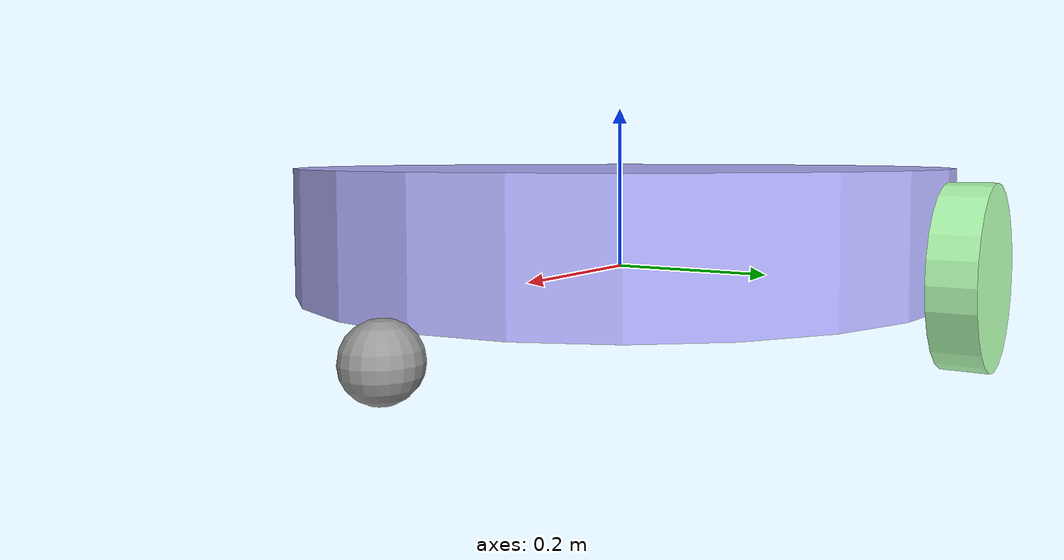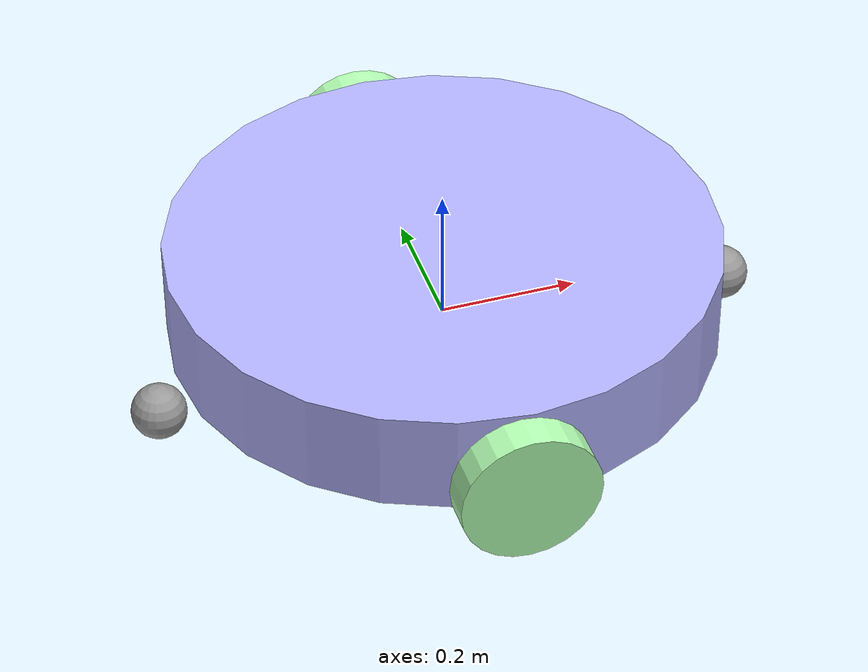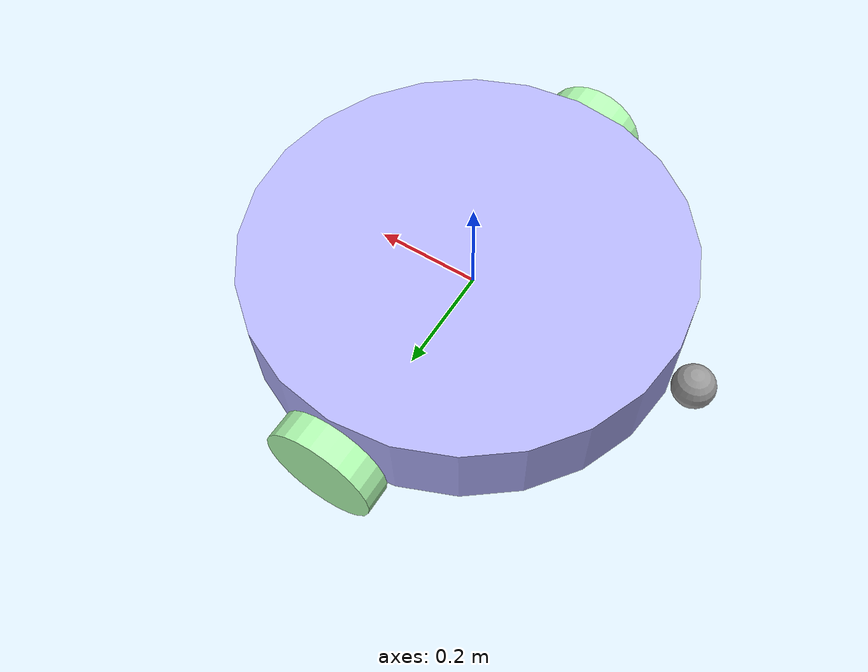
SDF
<?xml version='1.0'?>
<sdf version='1.7'>
  <model name='robot'>
    <link name='link_0'>
      <inertial>
        <mass>1</mass>
        <inertia>
          <ixx>0.145833</ixx>
          <ixy>0</ixy>
          <ixz>0</ixz>
          <iyy>0.145833</iyy>
          <iyz>0</iyz>
          <izz>0.125</izz>
        </inertia>
        <pose>0 0 0 0 -0 0</pose>
      </inertial>
      <pose>0.004299 0.010016 0.051555 -0 -0 -0</pose>
      <gravity>1</gravity>
      <self_collide>0</self_collide>
      <kinematic>0</kinematic>
      <enable_wind>0</enable_wind>
      <visual name='visual'>
        <pose>0 0 0 0 -0 0</pose>
        <geometry>
          <cylinder>
            <radius>0.4</radius>
            <length>0.15</length>
          </cylinder>
        </geometry>
        <material>
          <lighting>1</lighting>
          <script>
            <uri>file://media/materials/scripts/gazebo.material</uri>
            <name>Gazebo/Grey</name>
          </script>
          <shader type='pixel'>
            <normal_map>__default__</normal_map>
          </shader>
          <ambient>0.3 0.3 1 1</ambient>
          <diffuse>0.7 0.7 1 1</diffuse>
          <specular>0.01 0.01 1 1</specular>
          <emissive>0 0 0 1</emissive>
        </material>
        <transparency>0</transparency>
        <cast_shadows>1</cast_shadows>
      </visual>
      <collision name='collision'>
        <laser_retro>0</laser_retro>
        <max_contacts>10</max_contacts>
        <pose>0 0 0 0 -0 0</pose>
        <geometry>
          <cylinder>
            <radius>0.4</radius>
            <length>0.15</length>
          </cylinder>
        </geometry>
        <surface>
          <friction>
            <ode>
              <mu>1</mu>
              <mu2>1</mu2>
              <fdir1>0 0 0</fdir1>
              <slip1>0</slip1>
              <slip2>0</slip2>
            </ode>
            <torsional>
              <coefficient>1</coefficient>
              <patch_radius>0</patch_radius>
              <surface_radius>0</surface_radius>
              <use_patch_radius>1</use_patch_radius>
              <ode>
                <slip>0</slip>
              </ode>
            </torsional>
          </friction>
          <bounce>
            <restitution_coefficient>0</restitution_coefficient>
            <threshold>1e+06</threshold>
          </bounce>
          <contact>
            <collide_without_contact>0</collide_without_contact>
            <collide_without_contact_bitmask>1</collide_without_contact_bitmask>
            <collide_bitmask>1</collide_bitmask>
            <ode>
              <soft_cfm>0</soft_cfm>
              <soft_erp>0.2</soft_erp>
              <kp>1e+13</kp>
              <kd>1</kd>
              <max_vel>0.01</max_vel>
              <min_depth>0</min_depth>
            </ode>
            <bullet>
              <split_impulse>1</split_impulse>
              <split_impulse_penetration_threshold>-0.01</split_impulse_penetration_threshold>
              <soft_cfm>0</soft_cfm>
              <soft_erp>0.2</soft_erp>
              <kp>1e+13</kp>
              <kd>1</kd>
            </bullet>
          </contact>
        </surface>
      </collision>
    </link>
    <link name='link_1'>
      <inertial>
        <mass>1</mass>
        <inertia>
          <ixx>0.145833</ixx>
          <ixy>0</ixy>
          <ixz>0</ixz>
          <iyy>0.145833</iyy>
          <iyz>0</iyz>
          <izz>0.125</izz>
        </inertia>
        <pose>0 0 0 0 -0 0</pose>
      </inertial>
      <pose>-0.015701 -0.415035 0.022861 1.5707 -0 0</pose>
      <gravity>1</gravity>
      <self_collide>0</self_collide>
      <kinematic>0</kinematic>
      <enable_wind>0</enable_wind>
      <visual name='visual'>
        <pose>0 0 0 0 -0 0</pose>
        <geometry>
          <cylinder>
            <radius>0.1</radius>
            <length>0.05</length>
          </cylinder>
        </geometry>
        <material>
          <lighting>1</lighting>
          <script>
            <uri>file://media/materials/scripts/gazebo.material</uri>
            <name>Gazebo/Grey</name>
          </script>
          <shader type='pixel'>
            <normal_map>__default__</normal_map>
          </shader>
          <ambient>0.3 1 0.3 1</ambient>
          <diffuse>0.7 1 0.7 1</diffuse>
          <specular>0.01 1 0.01 1</specular>
          <emissive>0 0 0 1</emissive>
        </material>
        <transparency>0</transparency>
        <cast_shadows>1</cast_shadows>
      </visual>
      <collision name='collision'>
        <laser_retro>0</laser_retro>
        <max_contacts>10</max_contacts>
        <pose>0 0 0 0 -0 0</pose>
        <geometry>
          <cylinder>
            <radius>0.1</radius>
            <length>0.05</length>
          </cylinder>
        </geometry>
        <surface>
          <friction>
            <ode>
              <mu>1</mu>
              <mu2>1</mu2>
              <fdir1>0 0 0</fdir1>
              <slip1>0</slip1>
              <slip2>0</slip2>
            </ode>
            <torsional>
              <coefficient>1</coefficient>
              <patch_radius>0</patch_radius>
              <surface_radius>0</surface_radius>
              <use_patch_radius>1</use_patch_radius>
              <ode>
                <slip>0</slip>
              </ode>
            </torsional>
          </friction>
          <bounce>
            <restitution_coefficient>0</restitution_coefficient>
            <threshold>1e+06</threshold>
          </bounce>
          <contact>
            <collide_without_contact>0</collide_without_contact>
            <collide_without_contact_bitmask>1</collide_without_contact_bitmask>
            <collide_bitmask>1</collide_bitmask>
            <ode>
              <soft_cfm>0</soft_cfm>
              <soft_erp>0.2</soft_erp>
              <kp>1e+13</kp>
              <kd>1</kd>
              <max_vel>0.01</max_vel>
              <min_depth>0</min_depth>
            </ode>
            <bullet>
              <split_impulse>1</split_impulse>
              <split_impulse_penetration_threshold>-0.01</split_impulse_penetration_threshold>
              <soft_cfm>0</soft_cfm>
              <soft_erp>0.2</soft_erp>
              <kp>1e+13</kp>
              <kd>1</kd>
            </bullet>
          </contact>
        </surface>
      </collision>
    </link>
    <link name='link_1_clone'>
      <inertial>
        <mass>1</mass>
        <inertia>
          <ixx>0.145833</ixx>
          <ixy>0</ixy>
          <ixz>0</ixz>
          <iyy>0.145833</iyy>
          <iyz>0</iyz>
          <izz>0.125</izz>
        </inertia>
        <pose>0 0 0 0 -0 0</pose>
      </inertial>
      <pose>0.004299 0.434987 0.013343 1.5707 -0 0</pose>
      <gravity>1</gravity>
      <self_collide>0</self_collide>
      <kinematic>0</kinematic>
      <enable_wind>0</enable_wind>
      <visual name='visual'>
        <pose>0 0 0 0 -0 0</pose>
        <geometry>
          <cylinder>
            <radius>0.1</radius>
            <length>0.05</length>
          </cylinder>
        </geometry>
        <material>
          <lighting>1</lighting>
          <script>
            <uri>file://media/materials/scripts/gazebo.material</uri>
            <name>Gazebo/Grey</name>
          </script>
          <shader type='pixel'>
            <normal_map>__default__</normal_map>
          </shader>
          <ambient>0.3 1 0.3 1</ambient>
          <diffuse>0.7 1 0.7 1</diffuse>
          <specular>0.01 1 0.01 1</specular>
          <emissive>0 0 0 1</emissive>
        </material>
        <transparency>0</transparency>
        <cast_shadows>1</cast_shadows>
      </visual>
      <collision name='collision'>
        <laser_retro>0</laser_retro>
        <max_contacts>10</max_contacts>
        <pose>0 0 0 0 -0 0</pose>
        <geometry>
          <cylinder>
            <radius>0.1</radius>
            <length>0.05</length>
          </cylinder>
        </geometry>
        <surface>
          <friction>
            <ode>
              <mu>1</mu>
              <mu2>1</mu2>
              <fdir1>0 0 0</fdir1>
              <slip1>0</slip1>
              <slip2>0</slip2>
            </ode>
            <torsional>
              <coefficient>1</coefficient>
              <patch_radius>0</patch_radius>
              <surface_radius>0</surface_radius>
              <use_patch_radius>1</use_patch_radius>
              <ode>
                <slip>0</slip>
              </ode>
            </torsional>
          </friction>
          <bounce>
            <restitution_coefficient>0</restitution_coefficient>
            <threshold>1e+06</threshold>
          </bounce>
          <contact>
            <collide_without_contact>0</collide_without_contact>
            <collide_without_contact_bitmask>1</collide_without_contact_bitmask>
            <collide_bitmask>1</collide_bitmask>
            <ode>
              <soft_cfm>0</soft_cfm>
              <soft_erp>0.2</soft_erp>
              <kp>1e+13</kp>
              <kd>1</kd>
              <max_vel>0.01</max_vel>
              <min_depth>0</min_depth>
            </ode>
            <bullet>
              <split_impulse>1</split_impulse>
              <split_impulse_penetration_threshold>-0.01</split_impulse_penetration_threshold>
              <soft_cfm>0</soft_cfm>
              <soft_erp>0.2</soft_erp>
              <kp>1e+13</kp>
              <kd>1</kd>
            </bullet>
          </contact>
        </surface>
      </collision>
    </link>
    <link name='link_2'>
      <inertial>
        <mass>1</mass>
        <inertia>
          <ixx>0.1</ixx>
          <ixy>0</ixy>
          <ixz>0</ixz>
          <iyy>0.1</iyy>
          <iyz>0</iyz>
          <izz>0.1</izz>
        </inertia>
        <pose>0 0 0 0 -0 0</pose>
      </inertial>
      <pose>-0.431244 -0.039984 -0.043879 -0 -0 -0</pose>
      <gravity>1</gravity>
      <self_collide>0</self_collide>
      <kinematic>0</kinematic>
      <enable_wind>0</enable_wind>
      <visual name='visual'>
        <pose>0 0 0 0 -0 0</pose>
        <geometry>
          <sphere>
            <radius>0.04</radius>
          </sphere>
        </geometry>
        <material>
          <lighting>1</lighting>
          <script>
            <uri>file://media/materials/scripts/gazebo.material</uri>
            <name>Gazebo/Grey</name>
          </script>
          <shader type='pixel'>
            <normal_map>__default__</normal_map>
          </shader>
          <ambient>0.3 0.3 0.3 1</ambient>
          <diffuse>0.7 0.7 0.7 1</diffuse>
          <specular>0.01 0.01 0.01 1</specular>
          <emissive>0 0 0 1</emissive>
        </material>
        <transparency>0</transparency>
        <cast_shadows>1</cast_shadows>
      </visual>
      <collision name='collision'>
        <laser_retro>0</laser_retro>
        <max_contacts>10</max_contacts>
        <pose>0 0 0 0 -0 0</pose>
        <geometry>
          <sphere>
            <radius>0.04</radius>
          </sphere>
        </geometry>
        <surface>
          <friction>
            <ode>
              <mu>1</mu>
              <mu2>1</mu2>
              <fdir1>0 0 0</fdir1>
              <slip1>0</slip1>
              <slip2>0</slip2>
            </ode>
            <torsional>
              <coefficient>1</coefficient>
              <patch_radius>0</patch_radius>
              <surface_radius>0</surface_radius>
              <use_patch_radius>1</use_patch_radius>
              <ode>
                <slip>0</slip>
              </ode>
            </torsional>
          </friction>
          <bounce>
            <restitution_coefficient>0</restitution_coefficient>
            <threshold>1e+06</threshold>
          </bounce>
          <contact>
            <collide_without_contact>0</collide_without_contact>
            <collide_without_contact_bitmask>1</collide_without_contact_bitmask>
            <collide_bitmask>1</collide_bitmask>
            <ode>
              <soft_cfm>0</soft_cfm>
              <soft_erp>0.2</soft_erp>
              <kp>1e+13</kp>
              <kd>1</kd>
              <max_vel>0.01</max_vel>
              <min_depth>0</min_depth>
            </ode>
            <bullet>
              <split_impulse>1</split_impulse>
              <split_impulse_penetration_threshold>-0.01</split_impulse_penetration_threshold>
              <soft_cfm>0</soft_cfm>
              <soft_erp>0.2</soft_erp>
              <kp>1e+13</kp>
              <kd>1</kd>
            </bullet>
          </contact>
        </surface>
      </collision>
    </link>
    <link name='link_2_clone'>
      <inertial>
        <mass>1</mass>
        <inertia>
          <ixx>0.1</ixx>
          <ixy>0</ixy>
          <ixz>0</ixz>
          <iyy>0.1</iyy>
          <iyz>0</iyz>
          <izz>0.1</izz>
        </inertia>
        <pose>0 0 0 0 -0 0</pose>
      </inertial>
      <pose>0.438346 0.010016 -0.04388 -0 -0 -0</pose>
      <gravity>1</gravity>
      <self_collide>0</self_collide>
      <kinematic>0</kinematic>
      <enable_wind>0</enable_wind>
      <visual name='visual'>
        <pose>0 0 0 0 -0 0</pose>
        <geometry>
          <sphere>
            <radius>0.04</radius>
          </sphere>
        </geometry>
        <material>
          <lighting>1</lighting>
          <script>
            <uri>file://media/materials/scripts/gazebo.material</uri>
            <name>Gazebo/Grey</name>
          </script>
          <shader type='pixel'>
            <normal_map>__default__</normal_map>
          </shader>
          <ambient>0.3 0.3 0.3 1</ambient>
          <diffuse>0.7 0.7 0.7 1</diffuse>
          <specular>0.01 0.01 0.01 1</specular>
          <emissive>0 0 0 1</emissive>
        </material>
        <transparency>0</transparency>
        <cast_shadows>1</cast_shadows>
      </visual>
      <collision name='collision'>
        <laser_retro>0</laser_retro>
        <max_contacts>10</max_contacts>
        <pose>0 0 0 0 -0 0</pose>
        <geometry>
          <sphere>
            <radius>0.04</radius>
          </sphere>
        </geometry>
        <surface>
          <friction>
            <ode>
              <mu>1</mu>
              <mu2>1</mu2>
              <fdir1>0 0 0</fdir1>
              <slip1>0</slip1>
              <slip2>0</slip2>
            </ode>
            <torsional>
              <coefficient>1</coefficient>
              <patch_radius>0</patch_radius>
              <surface_radius>0</surface_radius>
              <use_patch_radius>1</use_patch_radius>
              <ode>
                <slip>0</slip>
              </ode>
            </torsional>
          </friction>
          <bounce>
            <restitution_coefficient>0</restitution_coefficient>
            <threshold>1e+06</threshold>
          </bounce>
          <contact>
            <collide_without_contact>0</collide_without_contact>
            <collide_without_contact_bitmask>1</collide_without_contact_bitmask>
            <collide_bitmask>1</collide_bitmask>
            <ode>
              <soft_cfm>0</soft_cfm>
              <soft_erp>0.2</soft_erp>
              <kp>1e+13</kp>
              <kd>1</kd>
              <max_vel>0.01</max_vel>
              <min_depth>0</min_depth>
            </ode>
            <bullet>
              <split_impulse>1</split_impulse>
              <split_impulse_penetration_threshold>-0.01</split_impulse_penetration_threshold>
              <soft_cfm>0</soft_cfm>
              <soft_erp>0.2</soft_erp>
              <kp>1e+13</kp>
              <kd>1</kd>
            </bullet>
          </contact>
        </surface>
      </collision>
    </link>
    <joint name='link_0_JOINT_1' type='revolute'>
      <parent>link_0</parent>
      <child>link_1</child>
      <pose>0 0 0 0 -0 0</pose>
      <axis>
        <xyz>0 0 1</xyz>
        <limit>
          <lower>-1.79769e+308</lower>
          <upper>1.79769e+308</upper>
          <effort>-1</effort>
          <velocity>-1</velocity>
        </limit>
        <dynamics>
          <spring_reference>0</spring_reference>
          <spring_stiffness>0</spring_stiffness>
          <damping>0</damping>
          <friction>0</friction>
        </dynamics>
      </axis>
      <physics>
        <ode>
          <limit>
            <cfm>0</cfm>
            <erp>0.2</erp>
          </limit>
          <suspension>
            <cfm>0</cfm>
            <erp>0.2</erp>
          </suspension>
        </ode>
      </physics>
    </joint>
    <joint name='link_0_JOINT_2' type='revolute'>
      <parent>link_0</parent>
      <child>link_1_clone</child>
      <pose>0 0 0 0 -0 0</pose>
      <axis>
        <xyz>0 0 1</xyz>
        <limit>
          <lower>-1.79769e+308</lower>
          <upper>1.79769e+308</upper>
          <effort>-1</effort>
          <velocity>-1</velocity>
        </limit>
        <dynamics>
          <spring_reference>0</spring_reference>
          <spring_stiffness>0</spring_stiffness>
          <damping>0</damping>
          <friction>0</friction>
        </dynamics>
      </axis>
      <physics>
        <ode>
          <limit>
            <cfm>0</cfm>
            <erp>0.2</erp>
          </limit>
          <suspension>
            <cfm>0</cfm>
            <erp>0.2</erp>
          </suspension>
        </ode>
      </physics>
    </joint>
    <joint name='link_0_JOINT_3' type='ball'>
      <parent>link_0</parent>
      <child>link_2</child>
      <pose>0 0 0 0 -0 0</pose>
      <physics>
        <ode>
          <limit>
            <cfm>0</cfm>
            <erp>0.2</erp>
          </limit>
          <suspension>
            <cfm>0</cfm>
            <erp>0.2</erp>
          </suspension>
        </ode>
      </physics>
    </joint>
    <joint name='link_0_JOINT_4' type='ball'>
      <parent>link_0</parent>
      <child>link_2_clone</child>
      <pose>0 0 0 0 -0 0</pose>
      <physics>
        <ode>
          <limit>
            <cfm>0</cfm>
            <erp>0.2</erp>
          </limit>
          <suspension>
            <cfm>0</cfm>
            <erp>0.2</erp>
          </suspension>
        </ode>
      </physics>
    </joint>
    <static>0</static>
    <allow_auto_disable>1</allow_auto_disable>
  </model>
</sdf>
